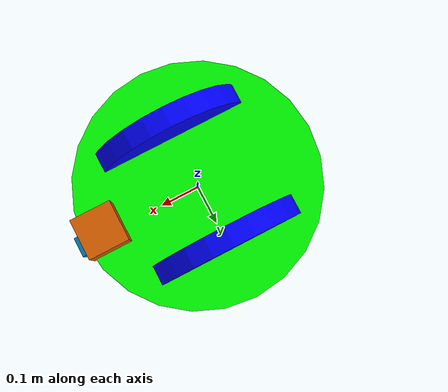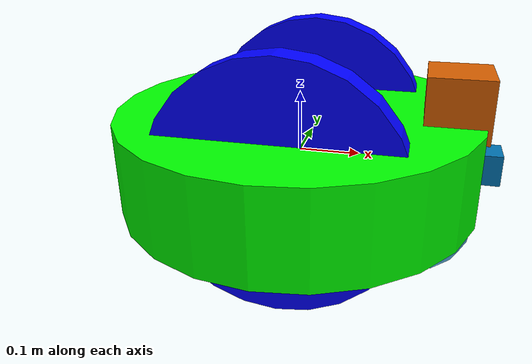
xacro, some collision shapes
<robot name="my_robot" xmlns:xacro="http://www.ros.org/wiki/xacro">

  <xacro:include filename="$(find my_robot)/urdf/my_robot.gazebo" />

  <link name="robot_footprint"></link>

  <joint name="robot_footprint_joint" type="fixed">
    <origin xyz="0 0 0" rpy="0 0 0" />
    <parent link="robot_footprint"/>
    <child link="chassis" />
  </joint>

  <link name='chassis'>
    <pose>0 0 0.1 0 0 0</pose>

    <inertial>
      <mass value="15.0"/>
      <origin xyz="0.0 0 0" rpy=" 0 0 0"/>
      <inertia
          ixx="0.1" ixy="0" ixz="0"
          iyy="0.1" iyz="0"
          izz="0.1"
      />
    </inertial>

    <collision name='collision'>
      <origin xyz="0 0 0" rpy=" 0 0 0"/>
      <geometry>
        <cylinder length="0.15" radius =".3"/>
      </geometry>
    </collision>

    <visual name='chassis_visual'>
      <origin xyz="0 0 0" rpy=" 0 0 0"/>
      <geometry>
        <cylinder length="0.15" radius =".3"/>
      </geometry>
      <material name="green">
         <color rgba="0 1 0 1" />
      </material>
    </visual>

    <collision name='back_caster_collision'>
      <origin xyz="-0.2 0 -0.1" rpy=" 0 0 0"/>
      <geometry>
        <sphere radius="0.095"/>
      </geometry>
    </collision>

    <visual name='back_caster_visual'>
      <origin xyz="-0.2 0 -0.1" rpy=" 0 0 0"/>
      <geometry>
        <sphere radius="0.095"/>
      </geometry>
    </visual>

    <collision name='front_caster_collision'>
      <origin xyz="0.2 0 -0.1" rpy=" 0 0 0"/>
      <geometry>
        <sphere radius="0.095"/>
      </geometry>
    </collision>

    <visual name='front_caster_visual'>
      <origin xyz="0.2 0 -0.1" rpy=" 0 0 0"/>
      <geometry>
        <sphere radius="0.095"/>
      </geometry>
    </visual>

  </link>

  <link name='left_wheel'>
    <pose>0 0 0 0 0 0</pose>

    <inertial>
      <mass value="5.0"/>
      <origin xyz="0.0 0 0" rpy=" 0 1.5707 1.5707"/>
      <inertia
          ixx="0.1" ixy="0" ixz="0"
          iyy="0.1" iyz="0"
          izz="0.1"
      />
    </inertial>

    <collision name='collision'>
      <origin xyz="0.0 0 0" rpy=" 0 1.5707 1.5707"/>
      <geometry>
        <cylinder length="0.05" radius ="0.2"/>
      </geometry>
    </collision>

    <visual name='left_wheel_visual'>
      <origin xyz="0.0 0 0" rpy=" 0 1.5707 1.5707"/>
      <geometry>
        <cylinder length="0.05" radius ="0.2"/>
      </geometry>
      <material name="blue">
         <color rgba="0 0 1 1" />
      </material>
    </visual>
  </link>

  <link name='right_wheel'>
    <pose>0 0 0 0 0 0</pose>

    <inertial>
      <mass value="5.0"/>
      <origin xyz="0.0 0 0" rpy=" 0 1.5707 1.5707"/>
      <inertia
          ixx="0.1" ixy="0" ixz="0"
          iyy="0.1" iyz="0"
          izz="0.1"
      />
    </inertial>

    <collision name='collision'>
      <origin xyz="0.0 0 0" rpy=" 0 1.5707 1.5707"/>
      <geometry>
        <cylinder length="0.05" radius ="0.2"/>
      </geometry>
    </collision>

    <visual name='right_wheel_visual'>
      <origin xyz="0.0 0 0" rpy=" 0 1.5707 1.5707"/>
      <geometry>
        <cylinder length="0.05" radius ="0.2"/>
      </geometry>
      <material name="blue">
         <color rgba="0 0 1 1" />
      </material>
    </visual>
  </link>

  <joint type="continuous" name="left_wheel_hinge">
    <origin xyz="0 0.15 0" rpy="0 0 0"/>
    <child link="left_wheel"/>
    <parent link="chassis"/>
    <axis xyz="0 1 0" rpy="0 0 0"/>
    <limit effort="10000" velocity="1000"/>
    <dynamics damping="1.0" friction="1.0"/>
  </joint>

  <joint type="continuous" name="right_wheel_hinge">
    <origin xyz="0 -0.15 0" rpy="0 0 0"/>
    <child link="right_wheel"/>
    <parent link="chassis"/>
    <axis xyz="0 1 0" rpy="0 0 0"/>
    <limit effort="10000" velocity="1000"/>
    <dynamics damping="1.0" friction="1.0"/>
  </joint>

  <link name='camera'>
    <pose>0 0 0 0 0 0</pose>

    <inertial>
      <mass value="0.1"/>
      <origin xyz="0.0 0 0" rpy=" 0 0 0"/>
      <box_inertia size= "0.05 0.05 0.05"/>
      <inertia
          ixx="1e-6" ixy="0" ixz="0"
          iyy="1e-6" iyz="0"
          izz="1e-6"
      />
    </inertial>

    <collision name='collision'>
      <origin xyz="0.0 0 0" rpy=" 0 0 0"/>
      <geometry>
        <box size="0.05 0.05 0.05"/>
      </geometry>
    </collision>

    <visual name='camera_visual'>
      <origin xyz="0.0 0 0" rpy=" 0 0 0"/>
      <geometry>
        <box size="0.05 0.05 0.05"/>
      </geometry>
    </visual>
  </link>

  <joint type="fixed" name="camera_joint">
    <origin xyz="0.3 0 0" rpy="0 0 0"/>
    <child link="camera"/>
    <parent link="chassis"/>
    <axis xyz="0 1 0" rpy="0 0 0"/>
    <limit effort="10000" velocity="1000"/>
    <dynamics damping="1.0" friction="1.0"/>
  </joint>

<link name='hokuyo'>
    <pose>0 0 0 0 0 0</pose>

    <inertial>
      <mass value="1e-5"/>
      <origin xyz="0.0 0 0" rpy=" 0 0 0"/>
      <inertia
          ixx="1e-6" ixy="0" ixz="0"
          iyy="1e-6" iyz="0"
          izz="1e-6"
      />
    </inertial>

    <collision name='collision'>
      <origin xyz="0.0 0 0" rpy=" 0 0 0"/>
      <geometry>
        <box size="0.1 0.1 0.1"/>
      </geometry>
    </collision>

    <visual name='hokuyo_visual'>
      <origin xyz="0.0 0 0" rpy=" 0 0 0"/>
      <geometry>
        <mesh filename="package://my_robot/meshes/hokuyo.dae"/>
      </geometry>
    </visual>
  </link>

  <joint type="fixed" name="hokuyo_joint">
    <origin xyz="0.25 0 .1" rpy="0 0 0"/>
    <child link="hokuyo"/>
    <parent link="chassis"/>
    <axis xyz="0 1 0" rpy="0 0 0"/>
    <limit effort="10000" velocity="1000"/>
    <dynamics damping="1.0" friction="1.0"/>
  </joint>

</robot>
